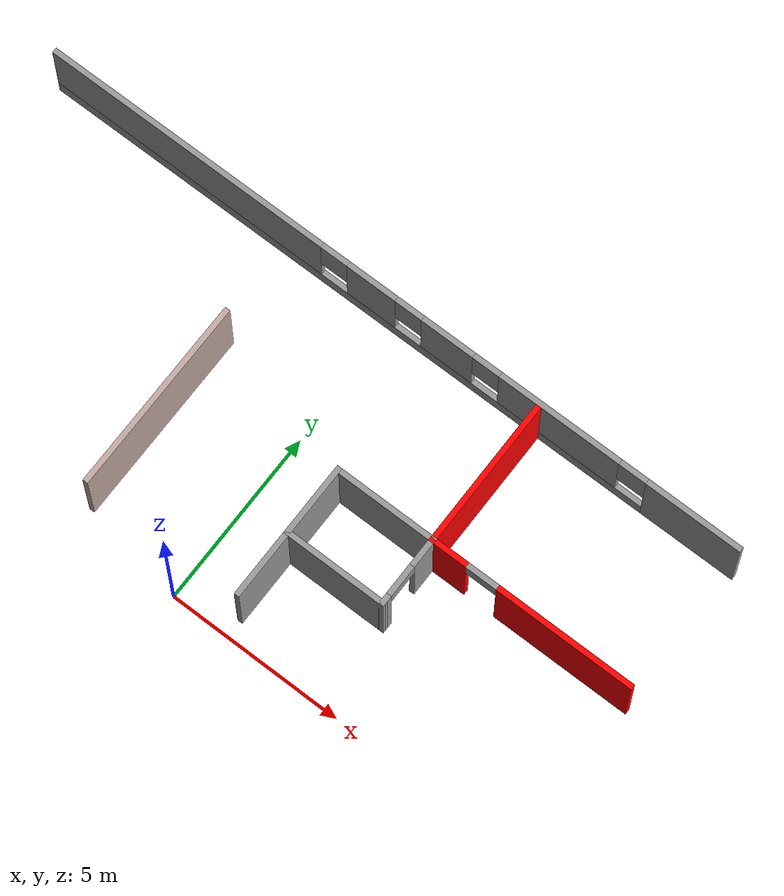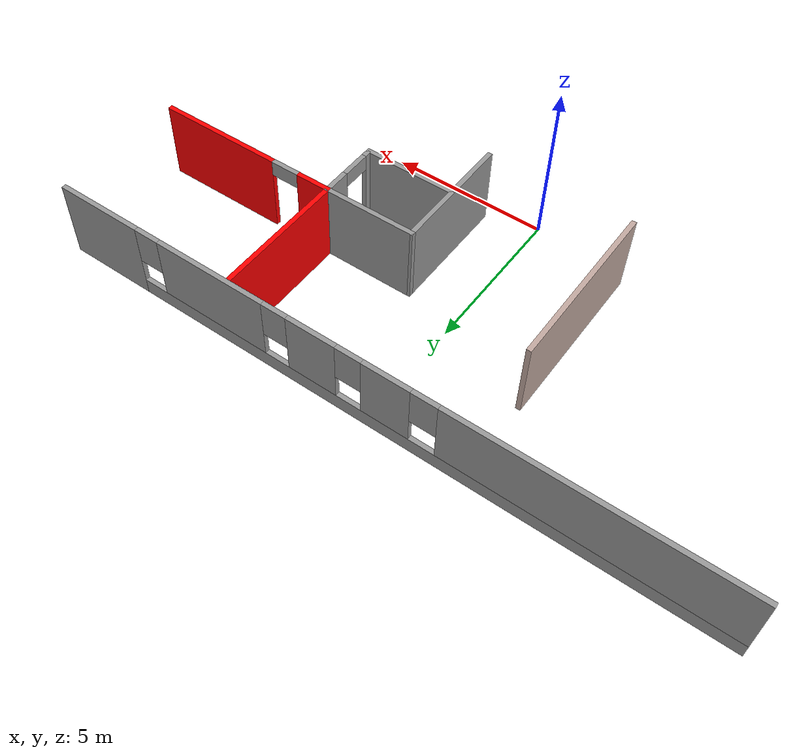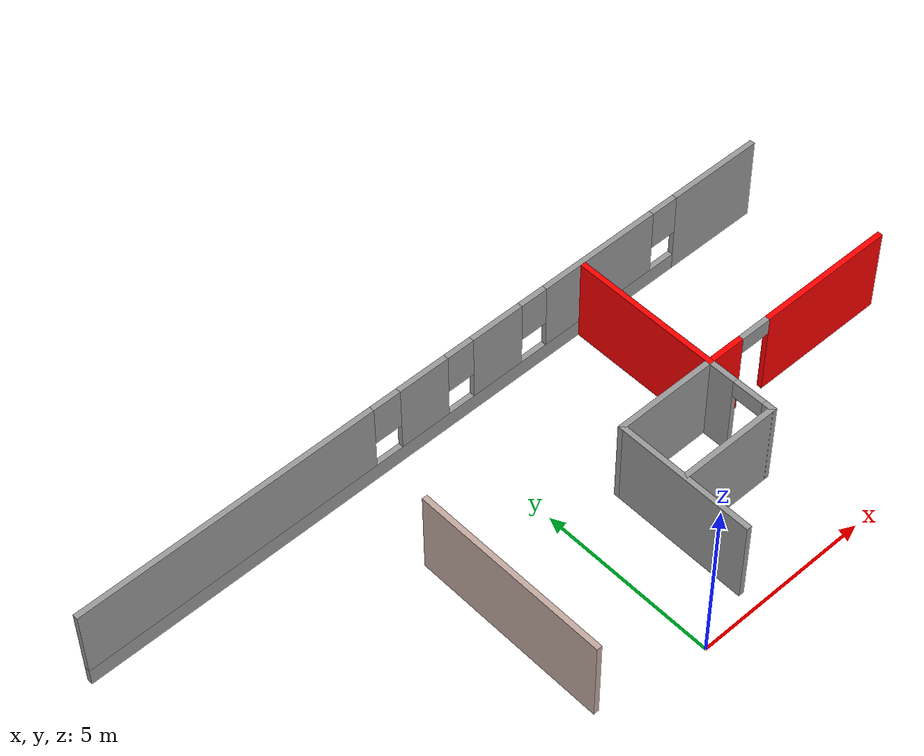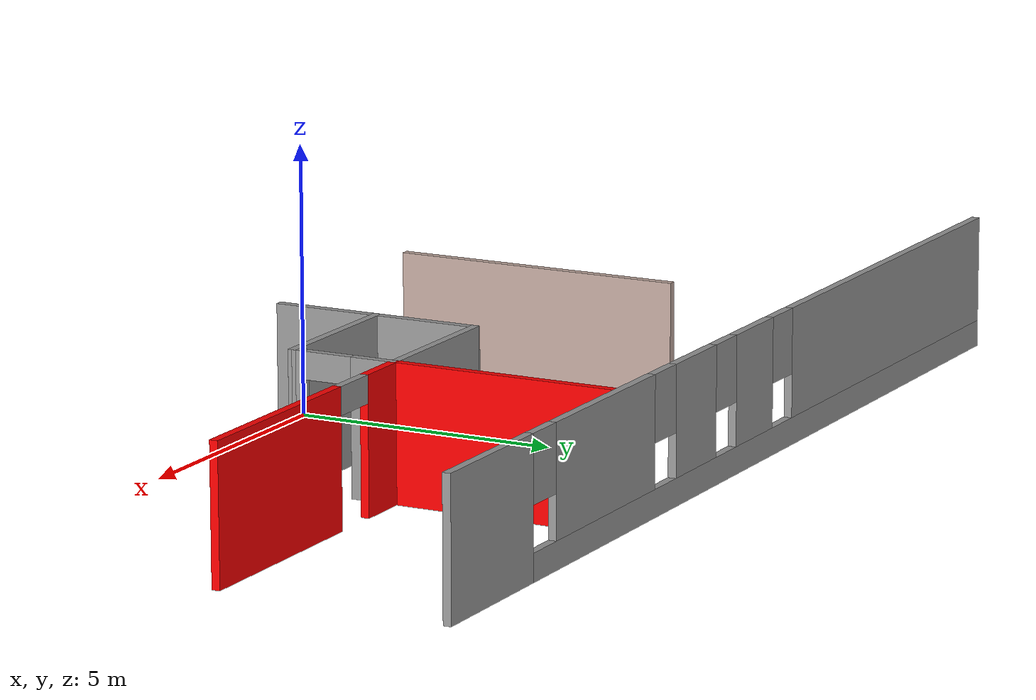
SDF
<sdf version="1.6">
 <model name="Building">
  <link name="Wall_13">
   <pose>-2.93835 3.23415 0 0 -0 1.57081</pose>
   <visual name="Wall_13_Visual">
    <pose>0 0 1.25 0 -0 0</pose>
    <geometry><box><size>5.5 0.15 2.5</size></box></geometry>
    <material>
     <script><uri>file://media/materials/scripts/gazebo.material</uri><name>Gazebo/Grey</name></script>
     <ambient>0.760784 0.662745 0.627451 1</ambient>
     <shader type="pixel"/>
     <diffuse>0.7 0.7 0.7 1</diffuse>
     <specular>0.01 0.01 0.01 1</specular>
     <emissive>0 0 0 1</emissive>
    </material>
    <meta><layer>0</layer></meta>
   </visual>
   <collision name="Wall_13_Collision">
    <pose>0 0 1.25 0 -0 0</pose>
    <geometry><box><size>5.5 0.15 2.5</size></box></geometry>
    <surface>
     <friction>
      <ode><mu>1</mu><mu2>1</mu2><fdir1>0 0 0</fdir1><slip1>0</slip1><slip2>0</slip2></ode>
      <torsional>
       <coefficient>1</coefficient>
       <patch_radius>0</patch_radius>
       <surface_radius>0</surface_radius>
       <use_patch_radius>1</use_patch_radius>
       <ode><slip>0</slip></ode>
      </torsional>
     </friction>
     <bounce><restitution_coefficient>0</restitution_coefficient><threshold>1e+06</threshold></bounce>
     <contact>
      <collide_without_contact>0</collide_without_contact>
      <collide_without_contact_bitmask>1</collide_without_contact_bitmask>
      <collide_bitmask>1</collide_bitmask>
      <ode>
       <soft_cfm>0</soft_cfm>
       <soft_erp>0.2</soft_erp>
       <kp>1e+13</kp>
       <kd>1</kd>
       <max_vel>0.01</max_vel>
       <min_depth>0</min_depth>
      </ode>
      <bullet>
       <split_impulse>1</split_impulse>
       <split_impulse_penetration_threshold>-0.01</split_impulse_penetration_threshold>
       <soft_cfm>0</soft_cfm>
       <soft_erp>0.2</soft_erp>
       <kp>1e+13</kp>
       <kd>1</kd>
      </bullet>
     </contact>
    </surface>
   </collision>
  </link>
  <link name="Wall_22">
   <pose>1.66169 2.48404 0 0 -0 1.5708</pose>
   <inertial>
    <mass>1</mass>
    <inertia><ixx>1</ixx><ixy>0</ixy><ixz>0</ixz><iyy>1</iyy><iyz>0</iyz><izz>1</izz></inertia>
   </inertial>
   <visual name="Wall_22_Visual">
    <pose>0 0 1.25 0 -0 0</pose>
    <geometry><box><size>4 0.15 2.5</size></box></geometry>
    <material>
     <script><uri>file://media/materials/scripts/gazebo.material</uri><name>Gazebo/Grey</name></script>
     <ambient>0 0 0 1</ambient>
     <shader type="pixel"><normal_map>__default__</normal_map></shader>
     <diffuse>0.7 0.7 0.7 1</diffuse>
     <specular>0.01 0.01 0.01 1</specular>
     <emissive>0 0 0 1</emissive>
    </material>
    <meta><layer>0</layer></meta>
   </visual>
   <collision name="Wall_22_Collision">
    <pose>0 0 1.25 0 -0 0</pose>
    <geometry><box><size>4 0.15 2.5</size></box></geometry>
    <surface>
     <friction>
      <ode><mu>1</mu><mu2>1</mu2><fdir1>0 0 0</fdir1><slip1>0</slip1><slip2>0</slip2></ode>
      <torsional>
       <coefficient>1</coefficient>
       <patch_radius>0</patch_radius>
       <surface_radius>0</surface_radius>
       <use_patch_radius>1</use_patch_radius>
       <ode><slip>0</slip></ode>
      </torsional>
     </friction>
     <bounce><restitution_coefficient>0</restitution_coefficient><threshold>1e+06</threshold></bounce>
     <contact>
      <collide_without_contact>0</collide_without_contact>
      <collide_without_contact_bitmask>1</collide_without_contact_bitmask>
      <collide_bitmask>1</collide_bitmask>
      <ode>
       <soft_cfm>0</soft_cfm>
       <soft_erp>0.2</soft_erp>
       <kp>1e+13</kp>
       <kd>1</kd>
       <max_vel>0.01</max_vel>
       <min_depth>0</min_depth>
      </ode>
      <bullet>
       <split_impulse>1</split_impulse>
       <split_impulse_penetration_threshold>-0.01</split_impulse_penetration_threshold>
       <soft_cfm>0</soft_cfm>
       <soft_erp>0.2</soft_erp>
       <kp>1e+13</kp>
       <kd>1</kd>
      </bullet>
     </contact>
    </surface>
   </collision>
  </link>
  <link name="Wall_23">
   <pose>3.08665 4.40915 0 0 -0 7.8e-05</pose>
   <inertial>
    <mass>1</mass>
    <inertia><ixx>1</ixx><ixy>0</ixy><ixz>0</ixz><iyy>1</iyy><iyz>0</iyz><izz>1</izz></inertia>
   </inertial>
   <visual name="Wall_23_Visual">
    <pose>0 0 1.25 0 -0 0</pose>
    <geometry><box><size>3 0.15 2.5</size></box></geometry>
    <material>
     <script><uri>file://media/materials/scripts/gazebo.material</uri><name>Gazebo/Grey</name></script>
     <ambient>0 0 0 1</ambient>
     <shader type="pixel"><normal_map>__default__</normal_map></shader>
     <diffuse>0.7 0.7 0.7 1</diffuse>
     <specular>0.01 0.01 0.01 1</specular>
     <emissive>0 0 0 1</emissive>
    </material>
    <meta><layer>0</layer></meta>
   </visual>
   <collision name="Wall_23_Collision">
    <pose>0 0 1.25 0 -0 0</pose>
    <geometry><box><size>3 0.15 2.5</size></box></geometry>
    <surface>
     <friction>
      <ode><mu>1</mu><mu2>1</mu2><fdir1>0 0 0</fdir1><slip1>0</slip1><slip2>0</slip2></ode>
      <torsional>
       <coefficient>1</coefficient>
       <patch_radius>0</patch_radius>
       <surface_radius>0</surface_radius>
       <use_patch_radius>1</use_patch_radius>
       <ode><slip>0</slip></ode>
      </torsional>
     </friction>
     <bounce><restitution_coefficient>0</restitution_coefficient><threshold>1e+06</threshold></bounce>
     <contact>
      <collide_without_contact>0</collide_without_contact>
      <collide_without_contact_bitmask>1</collide_without_contact_bitmask>
      <collide_bitmask>1</collide_bitmask>
      <ode>
       <soft_cfm>0</soft_cfm>
       <soft_erp>0.2</soft_erp>
       <kp>1e+13</kp>
       <kd>1</kd>
       <max_vel>0.01</max_vel>
       <min_depth>0</min_depth>
      </ode>
      <bullet>
       <split_impulse>1</split_impulse>
       <split_impulse_penetration_threshold>-0.01</split_impulse_penetration_threshold>
       <soft_cfm>0</soft_cfm>
       <soft_erp>0.2</soft_erp>
       <kp>1e+13</kp>
       <kd>1</kd>
      </bullet>
     </contact>
    </surface>
   </collision>
  </link>
  <link name="Wall_24">
   <pose>4.51162 6.46826 0 0 -0 1.5708</pose>
   <inertial>
    <mass>1</mass>
    <inertia><ixx>1</ixx><ixy>0</ixy><ixz>0</ixz><iyy>1</iyy><iyz>0</iyz><izz>1</izz></inertia>
   </inertial>
   <visual name="Wall_24_Visual">
    <pose>0 0 1.25 0 -0 0</pose>
    <geometry><box><size>4.268 0.15 2.5</size></box></geometry>
    <material>
     <script><uri>file://media/materials/scripts/gazebo.material</uri><name>Gazebo/Grey</name></script>
     <ambient>1 0 0 1</ambient>
     <shader type="pixel"><normal_map>__default__</normal_map></shader>
     <diffuse>0.7 0.7 0.7 1</diffuse>
     <specular>0.01 0.01 0.01 1</specular>
     <emissive>0 0 0 1</emissive>
    </material>
    <meta><layer>0</layer></meta>
   </visual>
   <collision name="Wall_24_Collision">
    <pose>0 0 1.25 0 -0 0</pose>
    <geometry><box><size>4.268 0.15 2.5</size></box></geometry>
    <surface>
     <friction>
      <ode><mu>1</mu><mu2>1</mu2><fdir1>0 0 0</fdir1><slip1>0</slip1><slip2>0</slip2></ode>
      <torsional>
       <coefficient>1</coefficient>
       <patch_radius>0</patch_radius>
       <surface_radius>0</surface_radius>
       <use_patch_radius>1</use_patch_radius>
       <ode><slip>0</slip></ode>
      </torsional>
     </friction>
     <bounce><restitution_coefficient>0</restitution_coefficient><threshold>1e+06</threshold></bounce>
     <contact>
      <collide_without_contact>0</collide_without_contact>
      <collide_without_contact_bitmask>1</collide_without_contact_bitmask>
      <collide_bitmask>1</collide_bitmask>
      <ode>
       <soft_cfm>0</soft_cfm>
       <soft_erp>0.2</soft_erp>
       <kp>1e+13</kp>
       <kd>1</kd>
       <max_vel>0.01</max_vel>
       <min_depth>0</min_depth>
      </ode>
      <bullet>
       <split_impulse>1</split_impulse>
       <split_impulse_penetration_threshold>-0.01</split_impulse_penetration_threshold>
       <soft_cfm>0</soft_cfm>
       <soft_erp>0.2</soft_erp>
       <kp>1e+13</kp>
       <kd>1</kd>
      </bullet>
     </contact>
    </surface>
   </collision>
  </link>
  <link name="Wall_29">
   <pose>3.09 2.4505 0 0 -0 0</pose>
   <inertial>
    <mass>1</mass>
    <inertia><ixx>1</ixx><ixy>0</ixy><ixz>0</ixz><iyy>1</iyy><iyz>0</iyz><izz>1</izz></inertia>
   </inertial>
   <visual name="Wall_29_Visual">
    <pose>0 0 1.25 0 -0 0</pose>
    <geometry><box><size>3 0.15 2.5</size></box></geometry>
    <material>
     <script><uri>file://media/materials/scripts/gazebo.material</uri><name>Gazebo/Grey</name></script>
     <ambient>0 0 0 1</ambient>
     <shader type="pixel"><normal_map>__default__</normal_map></shader>
     <diffuse>0.7 0.7 0.7 1</diffuse>
     <specular>0.01 0.01 0.01 1</specular>
     <emissive>0 0 0 1</emissive>
    </material>
    <meta><layer>0</layer></meta>
   </visual>
   <collision name="Wall_29_Collision">
    <pose>0 0 1.25 0 -0 0</pose>
    <geometry><box><size>3 0.15 2.5</size></box></geometry>
    <surface>
     <friction>
      <ode><mu>1</mu><mu2>1</mu2><fdir1>0 0 0</fdir1><slip1>0</slip1><slip2>0</slip2></ode>
      <torsional>
       <coefficient>1</coefficient>
       <patch_radius>0</patch_radius>
       <surface_radius>0</surface_radius>
       <use_patch_radius>1</use_patch_radius>
       <ode><slip>0</slip></ode>
      </torsional>
     </friction>
     <bounce><restitution_coefficient>0</restitution_coefficient><threshold>1e+06</threshold></bounce>
     <contact>
      <collide_without_contact>0</collide_without_contact>
      <collide_without_contact_bitmask>1</collide_without_contact_bitmask>
      <collide_bitmask>1</collide_bitmask>
      <ode>
       <soft_cfm>0</soft_cfm>
       <soft_erp>0.2</soft_erp>
       <kp>1e+13</kp>
       <kd>1</kd>
       <max_vel>0.01</max_vel>
       <min_depth>0</min_depth>
      </ode>
      <bullet>
       <split_impulse>1</split_impulse>
       <split_impulse_penetration_threshold>-0.01</split_impulse_penetration_threshold>
       <soft_cfm>0</soft_cfm>
       <soft_erp>0.2</soft_erp>
       <kp>1e+13</kp>
       <kd>1</kd>
      </bullet>
     </contact>
    </surface>
   </collision>
  </link>
  <link name="Wall_30">
   <pose>4.51331 3.42988 0 0 -0 1.57252</pose>
   <inertial>
    <mass>1</mass>
    <inertia><ixx>1</ixx><ixy>0</ixy><ixz>0</ixz><iyy>1</iyy><iyz>0</iyz><izz>1</izz></inertia>
   </inertial>
   <visual name="Wall_30_Visual_2">
    <pose>-0.276937 0 2.25 0 -0 0</pose>
    <geometry><box><size>0.9 0.15 0.5</size></box></geometry>
    <material>
     <script><uri>file://media/materials/scripts/gazebo.material</uri><name>Gazebo/Grey</name></script>
     <ambient>0 0 0 1</ambient>
     <shader type="pixel"><normal_map>__default__</normal_map></shader>
     <diffuse>0.7 0.7 0.7 1</diffuse>
     <specular>0.01 0.01 0.01 1</specular>
     <emissive>0 0 0 1</emissive>
    </material>
    <meta><layer>0</layer></meta>
   </visual>
   <visual name="Wall_30_Visual_0">
    <pose>-0.890603 0 1.25 0 -0 0</pose>
    <geometry><box><size>0.327334 0.15 2.5</size></box></geometry>
    <material>
     <script><uri>file://media/materials/scripts/gazebo.material</uri><name>Gazebo/Grey</name></script>
     <ambient>0 0 0 1</ambient>
     <shader type="pixel"><normal_map>__default__</normal_map></shader>
     <diffuse>0.7 0.7 0.7 1</diffuse>
     <specular>0.01 0.01 0.01 1</specular>
     <emissive>0 0 0 1</emissive>
    </material>
    <meta><layer>0</layer></meta>
   </visual>
   <visual name="Wall_30_Visual_1">
    <pose>0.613667 0 1.25 0 -0 0</pose>
    <geometry><box><size>0.881207 0.15 2.5</size></box></geometry>
    <material>
     <script><uri>file://media/materials/scripts/gazebo.material</uri><name>Gazebo/Grey</name></script>
     <ambient>0 0 0 1</ambient>
     <shader type="pixel"><normal_map>__default__</normal_map></shader>
     <diffuse>0.7 0.7 0.7 1</diffuse>
     <specular>0.01 0.01 0.01 1</specular>
     <emissive>0 0 0 1</emissive>
    </material>
    <meta><layer>0</layer></meta>
   </visual>
   <collision name="Wall_30_Collision_2">
    <pose>-0.276937 0 2.25 0 -0 0</pose>
    <geometry><box><size>0.9 0.15 0.5</size></box></geometry>
    <surface>
     <friction>
      <ode><mu>1</mu><mu2>1</mu2><fdir1>0 0 0</fdir1><slip1>0</slip1><slip2>0</slip2></ode>
      <torsional>
       <coefficient>1</coefficient>
       <patch_radius>0</patch_radius>
       <surface_radius>0</surface_radius>
       <use_patch_radius>1</use_patch_radius>
       <ode><slip>0</slip></ode>
      </torsional>
     </friction>
     <bounce><restitution_coefficient>0</restitution_coefficient><threshold>1e+06</threshold></bounce>
     <contact>
      <collide_without_contact>0</collide_without_contact>
      <collide_without_contact_bitmask>1</collide_without_contact_bitmask>
      <collide_bitmask>1</collide_bitmask>
      <ode>
       <soft_cfm>0</soft_cfm>
       <soft_erp>0.2</soft_erp>
       <kp>1e+13</kp>
       <kd>1</kd>
       <max_vel>0.01</max_vel>
       <min_depth>0</min_depth>
      </ode>
      <bullet>
       <split_impulse>1</split_impulse>
       <split_impulse_penetration_threshold>-0.01</split_impulse_penetration_threshold>
       <soft_cfm>0</soft_cfm>
       <soft_erp>0.2</soft_erp>
       <kp>1e+13</kp>
       <kd>1</kd>
      </bullet>
     </contact>
    </surface>
   </collision>
   <collision name="Wall_30_Collision_1">
    <pose>0.613667 0 1.25 0 -0 0</pose>
    <geometry><box><size>0.881207 0.15 2.5</size></box></geometry>
    <surface>
     <friction>
      <ode><mu>1</mu><mu2>1</mu2><fdir1>0 0 0</fdir1><slip1>0</slip1><slip2>0</slip2></ode>
      <torsional>
       <coefficient>1</coefficient>
       <patch_radius>0</patch_radius>
       <surface_radius>0</surface_radius>
       <use_patch_radius>1</use_patch_radius>
       <ode><slip>0</slip></ode>
      </torsional>
     </friction>
     <bounce><restitution_coefficient>0</restitution_coefficient><threshold>1e+06</threshold></bounce>
     <contact>
      <collide_without_contact>0</collide_without_contact>
      <collide_without_contact_bitmask>1</collide_without_contact_bitmask>
      <collide_bitmask>1</collide_bitmask>
      <ode>
       <soft_cfm>0</soft_cfm>
       <soft_erp>0.2</soft_erp>
       <kp>1e+13</kp>
       <kd>1</kd>
       <max_vel>0.01</max_vel>
       <min_depth>0</min_depth>
      </ode>
      <bullet>
       <split_impulse>1</split_impulse>
       <split_impulse_penetration_threshold>-0.01</split_impulse_penetration_threshold>
       <soft_cfm>0</soft_cfm>
       <soft_erp>0.2</soft_erp>
       <kp>1e+13</kp>
       <kd>1</kd>
      </bullet>
     </contact>
    </surface>
   </collision>
   <collision name="Wall_30_Collision_0">
    <pose>-0.890603 0 1.25 0 -0 0</pose>
    <geometry><box><size>0.327334 0.15 2.5</size></box></geometry>
    <surface>
     <friction>
      <ode><mu>1</mu><mu2>1</mu2><fdir1>0 0 0</fdir1><slip1>0</slip1><slip2>0</slip2></ode>
      <torsional>
       <coefficient>1</coefficient>
       <patch_radius>0</patch_radius>
       <surface_radius>0</surface_radius>
       <use_patch_radius>1</use_patch_radius>
       <ode><slip>0</slip></ode>
      </torsional>
     </friction>
     <bounce><restitution_coefficient>0</restitution_coefficient><threshold>1e+06</threshold></bounce>
     <contact>
      <collide_without_contact>0</collide_without_contact>
      <collide_without_contact_bitmask>1</collide_without_contact_bitmask>
      <collide_bitmask>1</collide_bitmask>
      <ode>
       <soft_cfm>0</soft_cfm>
       <soft_erp>0.2</soft_erp>
       <kp>1e+13</kp>
       <kd>1</kd>
       <max_vel>0.01</max_vel>
       <min_depth>0</min_depth>
      </ode>
      <bullet>
       <split_impulse>1</split_impulse>
       <split_impulse_penetration_threshold>-0.01</split_impulse_penetration_threshold>
       <soft_cfm>0</soft_cfm>
       <soft_erp>0.2</soft_erp>
       <kp>1e+13</kp>
       <kd>1</kd>
      </bullet>
     </contact>
    </surface>
   </collision>
  </link>
  <link name="Wall_32">
   <pose>7.43665 4.40915 0 0 0 -3.8e-05</pose>
   <inertial>
    <mass>1</mass>
    <inertia><ixx>1</ixx><ixy>0</ixy><ixz>0</ixz><iyy>1</iyy><iyz>0</iyz><izz>1</izz></inertia>
   </inertial>
   <visual name="Wall_32_Visual_2">
    <pose>-1.43369 0 2.25 0 -0 0</pose>
    <geometry><box><size>0.9 0.15 0.5</size></box></geometry>
    <material>
     <script><uri>file://media/materials/scripts/gazebo.material</uri><name>Gazebo/Grey</name></script>
     <ambient>1 1 1 1</ambient>
     <shader type="pixel"><normal_map>__default__</normal_map></shader>
     <diffuse>0.7 0.7 0.7 1</diffuse>
     <specular>0.01 0.01 0.01 1</specular>
     <emissive>0 0 0 1</emissive>
    </material>
    <meta><layer>0</layer></meta>
   </visual>
   <visual name="Wall_32_Visual_1">
    <pose>1.00815 0 1.25 0 -0 0</pose>
    <geometry><box><size>3.98369 0.15 2.5</size></box></geometry>
    <material>
     <script><uri>file://media/materials/scripts/gazebo.material</uri><name>Gazebo/Grey</name></script>
     <ambient>1 0 0 1</ambient>
     <shader type="pixel"><normal_map>__default__</normal_map></shader>
     <diffuse>0.7 0.7 0.7 1</diffuse>
     <specular>0.01 0.01 0.01 1</specular>
     <emissive>0 0 0 1</emissive>
    </material>
    <meta><layer>0</layer></meta>
   </visual>
   <visual name="Wall_32_Visual_0">
    <pose>-2.44184 0 1.25 0 -0 0</pose>
    <geometry><box><size>1.11631 0.15 2.5</size></box></geometry>
    <material>
     <script><uri>file://media/materials/scripts/gazebo.material</uri><name>Gazebo/Grey</name></script>
     <ambient>1 0 0 1</ambient>
     <shader type="pixel"><normal_map>__default__</normal_map></shader>
     <diffuse>0.7 0.7 0.7 1</diffuse>
     <specular>0.01 0.01 0.01 1</specular>
     <emissive>0 0 0 1</emissive>
    </material>
    <meta><layer>0</layer></meta>
   </visual>
   <collision name="Wall_32_Collision_1">
    <pose>1.00815 0 1.25 0 -0 0</pose>
    <geometry><box><size>3.98369 0.15 2.5</size></box></geometry>
    <surface>
     <friction>
      <ode><mu>1</mu><mu2>1</mu2><fdir1>0 0 0</fdir1><slip1>0</slip1><slip2>0</slip2></ode>
      <torsional>
       <coefficient>1</coefficient>
       <patch_radius>0</patch_radius>
       <surface_radius>0</surface_radius>
       <use_patch_radius>1</use_patch_radius>
       <ode><slip>0</slip></ode>
      </torsional>
     </friction>
     <bounce><restitution_coefficient>0</restitution_coefficient><threshold>1e+06</threshold></bounce>
     <contact>
      <collide_without_contact>0</collide_without_contact>
      <collide_without_contact_bitmask>1</collide_without_contact_bitmask>
      <collide_bitmask>1</collide_bitmask>
      <ode>
       <soft_cfm>0</soft_cfm>
       <soft_erp>0.2</soft_erp>
       <kp>1e+13</kp>
       <kd>1</kd>
       <max_vel>0.01</max_vel>
       <min_depth>0</min_depth>
      </ode>
      <bullet>
       <split_impulse>1</split_impulse>
       <split_impulse_penetration_threshold>-0.01</split_impulse_penetration_threshold>
       <soft_cfm>0</soft_cfm>
       <soft_erp>0.2</soft_erp>
       <kp>1e+13</kp>
       <kd>1</kd>
      </bullet>
     </contact>
    </surface>
   </collision>
   <collision name="Wall_32_Collision_2">
    <pose>-1.43369 0 2.25 0 -0 0</pose>
    <geometry><box><size>0.9 0.15 0.5</size></box></geometry>
    <surface>
     <friction>
      <ode><mu>1</mu><mu2>1</mu2><fdir1>0 0 0</fdir1><slip1>0</slip1><slip2>0</slip2></ode>
      <torsional>
       <coefficient>1</coefficient>
       <patch_radius>0</patch_radius>
       <surface_radius>0</surface_radius>
       <use_patch_radius>1</use_patch_radius>
       <ode><slip>0</slip></ode>
      </torsional>
     </friction>
     <bounce><restitution_coefficient>0</restitution_coefficient><threshold>1e+06</threshold></bounce>
     <contact>
      <collide_without_contact>0</collide_without_contact>
      <collide_without_contact_bitmask>1</collide_without_contact_bitmask>
      <collide_bitmask>1</collide_bitmask>
      <ode>
       <soft_cfm>0</soft_cfm>
       <soft_erp>0.2</soft_erp>
       <kp>1e+13</kp>
       <kd>1</kd>
       <max_vel>0.01</max_vel>
       <min_depth>0</min_depth>
      </ode>
      <bullet>
       <split_impulse>1</split_impulse>
       <split_impulse_penetration_threshold>-0.01</split_impulse_penetration_threshold>
       <soft_cfm>0</soft_cfm>
       <soft_erp>0.2</soft_erp>
       <kp>1e+13</kp>
       <kd>1</kd>
      </bullet>
     </contact>
    </surface>
   </collision>
   <collision name="Wall_32_Collision_0">
    <pose>-2.44184 0 1.25 0 -0 0</pose>
    <geometry><box><size>1.11631 0.15 2.5</size></box></geometry>
    <surface>
     <friction>
      <ode><mu>1</mu><mu2>1</mu2><fdir1>0 0 0</fdir1><slip1>0</slip1><slip2>0</slip2></ode>
      <torsional>
       <coefficient>1</coefficient>
       <patch_radius>0</patch_radius>
       <surface_radius>0</surface_radius>
       <use_patch_radius>1</use_patch_radius>
       <ode><slip>0</slip></ode>
      </torsional>
     </friction>
     <bounce><restitution_coefficient>0</restitution_coefficient><threshold>1e+06</threshold></bounce>
     <contact>
      <collide_without_contact>0</collide_without_contact>
      <collide_without_contact_bitmask>1</collide_without_contact_bitmask>
      <collide_bitmask>1</collide_bitmask>
      <ode>
       <soft_cfm>0</soft_cfm>
       <soft_erp>0.2</soft_erp>
       <kp>1e+13</kp>
       <kd>1</kd>
       <max_vel>0.01</max_vel>
       <min_depth>0</min_depth>
      </ode>
      <bullet>
       <split_impulse>1</split_impulse>
       <split_impulse_penetration_threshold>-0.01</split_impulse_penetration_threshold>
       <soft_cfm>0</soft_cfm>
       <soft_erp>0.2</soft_erp>
       <kp>1e+13</kp>
       <kd>1</kd>
      </bullet>
     </contact>
    </surface>
   </collision>
  </link>
  <link name="Wall_4">
   <pose>-0.009806 8.675 0 0 -0 3.14159</pose>
   <inertial>
    <mass>1</mass>
    <inertia><ixx>1</ixx><ixy>0</ixy><ixz>0</ixz><iyy>1</iyy><iyz>0</iyz><izz>1</izz></inertia>
   </inertial>
   <visual name="Wall_4_Visual_7">
    <pose>-2.92069 0 1.9 0 -0 0</pose>
    <geometry><box><size>0.8 0.15 1.2</size></box></geometry>
    <material>
     <script><uri>file://media/materials/scripts/gazebo.material</uri><name>Gazebo/Grey</name></script>
     <ambient>0.5 0.5 0.5 1</ambient>
     <shader type="pixel"><normal_map>__default__</normal_map></shader>
     <diffuse>0.7 0.7 0.7 1</diffuse>
     <specular>0.01 0.01 0.01 1</specular>
     <emissive>0 0 0 1</emissive>
    </material>
    <meta><layer>0</layer></meta>
   </visual>
   <visual name="Wall_4_Visual_2">
    <pose>-5.11769 0 1.5 0 -0 0</pose>
    <geometry><box><size>3.59401 0.15 2</size></box></geometry>
    <material>
     <script><uri>file://media/materials/scripts/gazebo.material</uri><name>Gazebo/Grey</name></script>
     <ambient>0.5 0.5 0.5 1</ambient>
     <shader type="pixel"><normal_map>__default__</normal_map></shader>
     <diffuse>0.7 0.7 0.7 1</diffuse>
     <specular>0.01 0.01 0.01 1</specular>
     <emissive>0 0 0 1</emissive>
    </material>
    <meta><layer>0</layer></meta>
   </visual>
   <visual name="Wall_4_Visual_6">
    <pose>-7.3147 0 1.9 0 -0 0</pose>
    <geometry><box><size>0.8 0.15 1.2</size></box></geometry>
    <material>
     <script><uri>file://media/materials/scripts/gazebo.material</uri><name>Gazebo/Grey</name></script>
     <ambient>0.5 0.5 0.5 1</ambient>
     <shader type="pixel"><normal_map>__default__</normal_map></shader>
     <diffuse>0.7 0.7 0.7 1</diffuse>
     <specular>0.01 0.01 0.01 1</specular>
     <emissive>0 0 0 1</emissive>
    </material>
    <meta><layer>0</layer></meta>
   </visual>
   <visual name="Wall_4_Visual_0">
    <pose>-9.10735 0 1.25 0 -0 0</pose>
    <geometry><box><size>2.7853 0.15 2.5</size></box></geometry>
    <material>
     <script><uri>file://media/materials/scripts/gazebo.material</uri><name>Gazebo/Grey</name></script>
     <ambient>0.5 0.5 0.5 1</ambient>
     <shader type="pixel"><normal_map>__default__</normal_map></shader>
     <diffuse>0.7 0.7 0.7 1</diffuse>
     <specular>0.01 0.01 0.01 1</specular>
     <emissive>0 0 0 1</emissive>
    </material>
    <meta><layer>0</layer></meta>
   </visual>
   <visual name="Wall_4_Visual_3">
    <pose>-1.74081 0 1.5 0 -0 0</pose>
    <geometry><box><size>1.55975 0.15 2</size></box></geometry>
    <material>
     <script><uri>file://media/materials/scripts/gazebo.material</uri><name>Gazebo/Grey</name></script>
     <ambient>0.5 0.5 0.5 1</ambient>
     <shader type="pixel"><normal_map>__default__</normal_map></shader>
     <diffuse>0.7 0.7 0.7 1</diffuse>
     <specular>0.01 0.01 0.01 1</specular>
     <emissive>0 0 0 1</emissive>
    </material>
    <meta><layer>0</layer></meta>
   </visual>
   <visual name="Wall_4_Visual_9">
    <pose>1.71744 0 1.9 0 -0 0</pose>
    <geometry><box><size>0.8 0.15 1.2</size></box></geometry>
    <material>
     <script><uri>file://media/materials/scripts/gazebo.material</uri><name>Gazebo/Grey</name></script>
     <ambient>0.5 0.5 0.5 1</ambient>
     <shader type="pixel"><normal_map>__default__</normal_map></shader>
     <diffuse>0.7 0.7 0.7 1</diffuse>
     <specular>0.01 0.01 0.01 1</specular>
     <emissive>0 0 0 1</emissive>
    </material>
    <meta><layer>0</layer></meta>
   </visual>
   <visual name="Wall_4_Visual_5">
    <pose>6.30872 0 1.5 0 -0 0</pose>
    <geometry><box><size>8.38256 0.15 2</size></box></geometry>
    <material>
     <script><uri>file://media/materials/scripts/gazebo.material</uri><name>Gazebo/Grey</name></script>
     <ambient>0.5 0.5 0.5 1</ambient>
     <shader type="pixel"><normal_map>__default__</normal_map></shader>
     <diffuse>0.7 0.7 0.7 1</diffuse>
     <specular>0.01 0.01 0.01 1</specular>
     <emissive>0 0 0 1</emissive>
    </material>
    <meta><layer>0</layer></meta>
   </visual>
   <visual name="Wall_4_Visual_1">
    <pose>1.39265 0 0.25 0 -0 0</pose>
    <geometry><box><size>18.2147 0.15 0.5</size></box></geometry>
    <material>
     <script><uri>file://media/materials/scripts/gazebo.material</uri><name>Gazebo/Grey</name></script>
     <ambient>0.5 0.5 0.5 1</ambient>
     <shader type="pixel"><normal_map>__default__</normal_map></shader>
     <diffuse>0.7 0.7 0.7 1</diffuse>
     <specular>0.01 0.01 0.01 1</specular>
     <emissive>0 0 0 1</emissive>
    </material>
    <meta><layer>0</layer></meta>
   </visual>
   <visual name="Wall_4_Visual_8">
    <pose>-0.560937 0 1.9 0 -0 0</pose>
    <geometry><box><size>0.8 0.15 1.2</size></box></geometry>
    <material>
     <script><uri>file://media/materials/scripts/gazebo.material</uri><name>Gazebo/Grey</name></script>
     <ambient>0.5 0.5 0.5 1</ambient>
     <shader type="pixel"><normal_map>__default__</normal_map></shader>
     <diffuse>0.7 0.7 0.7 1</diffuse>
     <specular>0.01 0.01 0.01 1</specular>
     <emissive>0 0 0 1</emissive>
    </material>
    <meta><layer>0</layer></meta>
   </visual>
   <visual name="Wall_4_Visual_4">
    <pose>0.578252 0 1.5 0 -0 0</pose>
    <geometry><box><size>1.47838 0.15 2</size></box></geometry>
    <material>
     <script><uri>file://media/materials/scripts/gazebo.material</uri><name>Gazebo/Grey</name></script>
     <ambient>0.5 0.5 0.5 1</ambient>
     <shader type="pixel"><normal_map>__default__</normal_map></shader>
     <diffuse>0.7 0.7 0.7 1</diffuse>
     <specular>0.01 0.01 0.01 1</specular>
     <emissive>0 0 0 1</emissive>
    </material>
    <meta><layer>0</layer></meta>
   </visual>
   <collision name="Wall_4_Collision_2">
    <pose>-5.11769 0 1.5 0 -0 0</pose>
    <geometry><box><size>3.59401 0.15 2</size></box></geometry>
    <surface>
     <friction>
      <ode><mu>1</mu><mu2>1</mu2><fdir1>0 0 0</fdir1><slip1>0</slip1><slip2>0</slip2></ode>
      <torsional>
       <coefficient>1</coefficient>
       <patch_radius>0</patch_radius>
       <surface_radius>0</surface_radius>
       <use_patch_radius>1</use_patch_radius>
       <ode><slip>0</slip></ode>
      </torsional>
     </friction>
     <bounce><restitution_coefficient>0</restitution_coefficient><threshold>1e+06</threshold></bounce>
     <contact>
      <collide_without_contact>0</collide_without_contact>
      <collide_without_contact_bitmask>1</collide_without_contact_bitmask>
      <collide_bitmask>1</collide_bitmask>
      <ode>
       <soft_cfm>0</soft_cfm>
       <soft_erp>0.2</soft_erp>
       <kp>1e+13</kp>
       <kd>1</kd>
       <max_vel>0.01</max_vel>
       <min_depth>0</min_depth>
      </ode>
      <bullet>
       <split_impulse>1</split_impulse>
       <split_impulse_penetration_threshold>-0.01</split_impulse_penetration_threshold>
       <soft_cfm>0</soft_cfm>
       <soft_erp>0.2</soft_erp>
       <kp>1e+13</kp>
       <kd>1</kd>
      </bullet>
     </contact>
    </surface>
   </collision>
   <collision name="Wall_4_Collision_3">
    <pose>-1.74081 0 1.5 0 -0 0</pose>
    <geometry><box><size>1.55975 0.15 2</size></box></geometry>
    <surface>
     <friction>
      <ode><mu>1</mu><mu2>1</mu2><fdir1>0 0 0</fdir1><slip1>0</slip1><slip2>0</slip2></ode>
      <torsional>
       <coefficient>1</coefficient>
       <patch_radius>0</patch_radius>
       <surface_radius>0</surface_radius>
       <use_patch_radius>1</use_patch_radius>
       <ode><slip>0</slip></ode>
      </torsional>
     </friction>
     <bounce><restitution_coefficient>0</restitution_coefficient><threshold>1e+06</threshold></bounce>
     <contact>
      <collide_without_contact>0</collide_without_contact>
      <collide_without_contact_bitmask>1</collide_without_contact_bitmask>
      <collide_bitmask>1</collide_bitmask>
      <ode>
       <soft_cfm>0</soft_cfm>
       <soft_erp>0.2</soft_erp>
       <kp>1e+13</kp>
       <kd>1</kd>
       <max_vel>0.01</max_vel>
       <min_depth>0</min_depth>
      </ode>
      <bullet>
       <split_impulse>1</split_impulse>
       <split_impulse_penetration_threshold>-0.01</split_impulse_penetration_threshold>
       <soft_cfm>0</soft_cfm>
       <soft_erp>0.2</soft_erp>
       <kp>1e+13</kp>
       <kd>1</kd>
      </bullet>
     </contact>
    </surface>
   </collision>
   <collision name="Wall_4_Collision_7">
    <pose>-2.92069 0 1.9 0 -0 0</pose>
    <geometry><box><size>0.8 0.15 1.2</size></box></geometry>
    <surface>
     <friction>
      <ode><mu>1</mu><mu2>1</mu2><fdir1>0 0 0</fdir1><slip1>0</slip1><slip2>0</slip2></ode>
      <torsional>
       <coefficient>1</coefficient>
       <patch_radius>0</patch_radius>
       <surface_radius>0</surface_radius>
       <use_patch_radius>1</use_patch_radius>
       <ode><slip>0</slip></ode>
      </torsional>
     </friction>
     <bounce><restitution_coefficient>0</restitution_coefficient><threshold>1e+06</threshold></bounce>
     <contact>
      <collide_without_contact>0</collide_without_contact>
      <collide_without_contact_bitmask>1</collide_without_contact_bitmask>
      <collide_bitmask>1</collide_bitmask>
      <ode>
       <soft_cfm>0</soft_cfm>
       <soft_erp>0.2</soft_erp>
       <kp>1e+13</kp>
       <kd>1</kd>
       <max_vel>0.01</max_vel>
       <min_depth>0</min_depth>
      </ode>
      <bullet>
       <split_impulse>1</split_impulse>
       <split_impulse_penetration_threshold>-0.01</split_impulse_penetration_threshold>
       <soft_cfm>0</soft_cfm>
       <soft_erp>0.2</soft_erp>
       <kp>1e+13</kp>
       <kd>1</kd>
      </bullet>
     </contact>
    </surface>
   </collision>
   <collision name="Wall_4_Collision_5">
    <pose>6.30872 0 1.5 0 -0 0</pose>
    <geometry><box><size>8.38256 0.15 2</size></box></geometry>
    <surface>
     <friction>
      <ode><mu>1</mu><mu2>1</mu2><fdir1>0 0 0</fdir1><slip1>0</slip1><slip2>0</slip2></ode>
      <torsional>
       <coefficient>1</coefficient>
       <patch_radius>0</patch_radius>
       <surface_radius>0</surface_radius>
       <use_patch_radius>1</use_patch_radius>
       <ode><slip>0</slip></ode>
      </torsional>
     </friction>
     <bounce><restitution_coefficient>0</restitution_coefficient><threshold>1e+06</threshold></bounce>
     <contact>
      <collide_without_contact>0</collide_without_contact>
      <collide_without_contact_bitmask>1</collide_without_contact_bitmask>
      <collide_bitmask>1</collide_bitmask>
      <ode>
       <soft_cfm>0</soft_cfm>
       <soft_erp>0.2</soft_erp>
       <kp>1e+13</kp>
       <kd>1</kd>
       <max_vel>0.01</max_vel>
       <min_depth>0</min_depth>
      </ode>
      <bullet>
       <split_impulse>1</split_impulse>
       <split_impulse_penetration_threshold>-0.01</split_impulse_penetration_threshold>
       <soft_cfm>0</soft_cfm>
       <soft_erp>0.2</soft_erp>
       <kp>1e+13</kp>
       <kd>1</kd>
      </bullet>
     </contact>
    </surface>
   </collision>
   <collision name="Wall_4_Collision_4">
    <pose>0.578252 0 1.5 0 -0 0</pose>
    <geometry><box><size>1.47838 0.15 2</size></box></geometry>
    <surface>
     <friction>
      <ode><mu>1</mu><mu2>1</mu2><fdir1>0 0 0</fdir1><slip1>0</slip1><slip2>0</slip2></ode>
      <torsional>
       <coefficient>1</coefficient>
       <patch_radius>0</patch_radius>
       <surface_radius>0</surface_radius>
       <use_patch_radius>1</use_patch_radius>
       <ode><slip>0</slip></ode>
      </torsional>
     </friction>
     <bounce><restitution_coefficient>0</restitution_coefficient><threshold>1e+06</threshold></bounce>
     <contact>
      <collide_without_contact>0</collide_without_contact>
      <collide_without_contact_bitmask>1</collide_without_contact_bitmask>
      <collide_bitmask>1</collide_bitmask>
      <ode>
       <soft_cfm>0</soft_cfm>
       <soft_erp>0.2</soft_erp>
       <kp>1e+13</kp>
       <kd>1</kd>
       <max_vel>0.01</max_vel>
       <min_depth>0</min_depth>
      </ode>
      <bullet>
       <split_impulse>1</split_impulse>
       <split_impulse_penetration_threshold>-0.01</split_impulse_penetration_threshold>
       <soft_cfm>0</soft_cfm>
       <soft_erp>0.2</soft_erp>
       <kp>1e+13</kp>
       <kd>1</kd>
      </bullet>
     </contact>
    </surface>
   </collision>
   <collision name="Wall_4_Collision_0">
    <pose>-9.10735 0 1.25 0 -0 0</pose>
    <geometry><box><size>2.7853 0.15 2.5</size></box></geometry>
    <surface>
     <friction>
      <ode><mu>1</mu><mu2>1</mu2><fdir1>0 0 0</fdir1><slip1>0</slip1><slip2>0</slip2></ode>
      <torsional>
       <coefficient>1</coefficient>
       <patch_radius>0</patch_radius>
       <surface_radius>0</surface_radius>
       <use_patch_radius>1</use_patch_radius>
       <ode><slip>0</slip></ode>
      </torsional>
     </friction>
     <bounce><restitution_coefficient>0</restitution_coefficient><threshold>1e+06</threshold></bounce>
     <contact>
      <collide_without_contact>0</collide_without_contact>
      <collide_without_contact_bitmask>1</collide_without_contact_bitmask>
      <collide_bitmask>1</collide_bitmask>
      <ode>
       <soft_cfm>0</soft_cfm>
       <soft_erp>0.2</soft_erp>
       <kp>1e+13</kp>
       <kd>1</kd>
       <max_vel>0.01</max_vel>
       <min_depth>0</min_depth>
      </ode>
      <bullet>
       <split_impulse>1</split_impulse>
       <split_impulse_penetration_threshold>-0.01</split_impulse_penetration_threshold>
       <soft_cfm>0</soft_cfm>
       <soft_erp>0.2</soft_erp>
       <kp>1e+13</kp>
       <kd>1</kd>
      </bullet>
     </contact>
    </surface>
   </collision>
   <collision name="Wall_4_Collision_8">
    <pose>-0.560937 0 1.9 0 -0 0</pose>
    <geometry><box><size>0.8 0.15 1.2</size></box></geometry>
    <surface>
     <friction>
      <ode><mu>1</mu><mu2>1</mu2><fdir1>0 0 0</fdir1><slip1>0</slip1><slip2>0</slip2></ode>
      <torsional>
       <coefficient>1</coefficient>
       <patch_radius>0</patch_radius>
       <surface_radius>0</surface_radius>
       <use_patch_radius>1</use_patch_radius>
       <ode><slip>0</slip></ode>
      </torsional>
     </friction>
     <bounce><restitution_coefficient>0</restitution_coefficient><threshold>1e+06</threshold></bounce>
     <contact>
      <collide_without_contact>0</collide_without_contact>
      <collide_without_contact_bitmask>1</collide_without_contact_bitmask>
      <collide_bitmask>1</collide_bitmask>
      <ode>
       <soft_cfm>0</soft_cfm>
       <soft_erp>0.2</soft_erp>
       <kp>1e+13</kp>
       <kd>1</kd>
       <max_vel>0.01</max_vel>
       <min_depth>0</min_depth>
      </ode>
      <bullet>
       <split_impulse>1</split_impulse>
       <split_impulse_penetration_threshold>-0.01</split_impulse_penetration_threshold>
       <soft_cfm>0</soft_cfm>
       <soft_erp>0.2</soft_erp>
       <kp>1e+13</kp>
       <kd>1</kd>
      </bullet>
     </contact>
    </surface>
   </collision>
   <collision name="Wall_4_Collision_6">
    <pose>-7.3147 0 1.9 0 -0 0</pose>
    <geometry><box><size>0.8 0.15 1.2</size></box></geometry>
    <surface>
     <friction>
      <ode><mu>1</mu><mu2>1</mu2><fdir1>0 0 0</fdir1><slip1>0</slip1><slip2>0</slip2></ode>
      <torsional>
       <coefficient>1</coefficient>
       <patch_radius>0</patch_radius>
       <surface_radius>0</surface_radius>
       <use_patch_radius>1</use_patch_radius>
       <ode><slip>0</slip></ode>
      </torsional>
     </friction>
     <bounce><restitution_coefficient>0</restitution_coefficient><threshold>1e+06</threshold></bounce>
     <contact>
      <collide_without_contact>0</collide_without_contact>
      <collide_without_contact_bitmask>1</collide_without_contact_bitmask>
      <collide_bitmask>1</collide_bitmask>
      <ode>
       <soft_cfm>0</soft_cfm>
       <soft_erp>0.2</soft_erp>
       <kp>1e+13</kp>
       <kd>1</kd>
       <max_vel>0.01</max_vel>
       <min_depth>0</min_depth>
      </ode>
      <bullet>
       <split_impulse>1</split_impulse>
       <split_impulse_penetration_threshold>-0.01</split_impulse_penetration_threshold>
       <soft_cfm>0</soft_cfm>
       <soft_erp>0.2</soft_erp>
       <kp>1e+13</kp>
       <kd>1</kd>
      </bullet>
     </contact>
    </surface>
   </collision>
   <collision name="Wall_4_Collision_1">
    <pose>1.39265 0 0.25 0 -0 0</pose>
    <geometry><box><size>18.2147 0.15 0.5</size></box></geometry>
    <surface>
     <friction>
      <ode><mu>1</mu><mu2>1</mu2><fdir1>0 0 0</fdir1><slip1>0</slip1><slip2>0</slip2></ode>
      <torsional>
       <coefficient>1</coefficient>
       <patch_radius>0</patch_radius>
       <surface_radius>0</surface_radius>
       <use_patch_radius>1</use_patch_radius>
       <ode><slip>0</slip></ode>
      </torsional>
     </friction>
     <bounce><restitution_coefficient>0</restitution_coefficient><threshold>1e+06</threshold></bounce>
     <contact>
      <collide_without_contact>0</collide_without_contact>
      <collide_without_contact_bitmask>1</collide_without_contact_bitmask>
      <collide_bitmask>1</collide_bitmask>
      <ode>
       <soft_cfm>0</soft_cfm>
       <soft_erp>0.2</soft_erp>
       <kp>1e+13</kp>
       <kd>1</kd>
       <max_vel>0.01</max_vel>
       <min_depth>0</min_depth>
      </ode>
      <bullet>
       <split_impulse>1</split_impulse>
       <split_impulse_penetration_threshold>-0.01</split_impulse_penetration_threshold>
       <soft_cfm>0</soft_cfm>
       <soft_erp>0.2</soft_erp>
       <kp>1e+13</kp>
       <kd>1</kd>
      </bullet>
     </contact>
    </surface>
   </collision>
   <collision name="Wall_4_Collision_9">
    <pose>1.71744 0 1.9 0 -0 0</pose>
    <geometry><box><size>0.8 0.15 1.2</size></box></geometry>
    <surface>
     <friction>
      <ode><mu>1</mu><mu2>1</mu2><fdir1>0 0 0</fdir1><slip1>0</slip1><slip2>0</slip2></ode>
      <torsional>
       <coefficient>1</coefficient>
       <patch_radius>0</patch_radius>
       <surface_radius>0</surface_radius>
       <use_patch_radius>1</use_patch_radius>
       <ode><slip>0</slip></ode>
      </torsional>
     </friction>
     <bounce><restitution_coefficient>0</restitution_coefficient><threshold>1e+06</threshold></bounce>
     <contact>
      <collide_without_contact>0</collide_without_contact>
      <collide_without_contact_bitmask>1</collide_without_contact_bitmask>
      <collide_bitmask>1</collide_bitmask>
      <ode>
       <soft_cfm>0</soft_cfm>
       <soft_erp>0.2</soft_erp>
       <kp>1e+13</kp>
       <kd>1</kd>
       <max_vel>0.01</max_vel>
       <min_depth>0</min_depth>
      </ode>
      <bullet>
       <split_impulse>1</split_impulse>
       <split_impulse_penetration_threshold>-0.01</split_impulse_penetration_threshold>
       <soft_cfm>0</soft_cfm>
       <soft_erp>0.2</soft_erp>
       <kp>1e+13</kp>
       <kd>1</kd>
      </bullet>
     </contact>
    </surface>
   </collision>
  </link>
  <static>1</static>
 </model>
</sdf>
